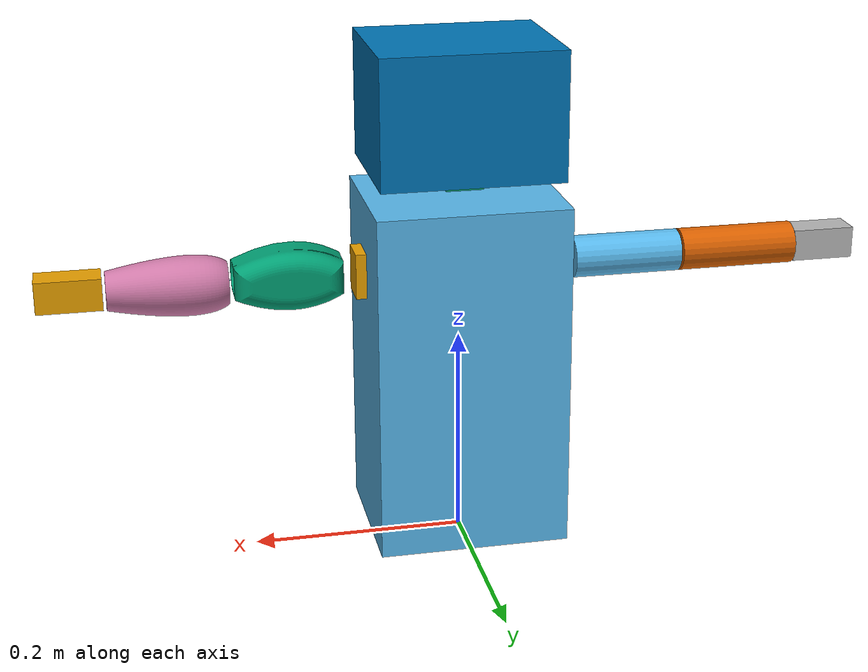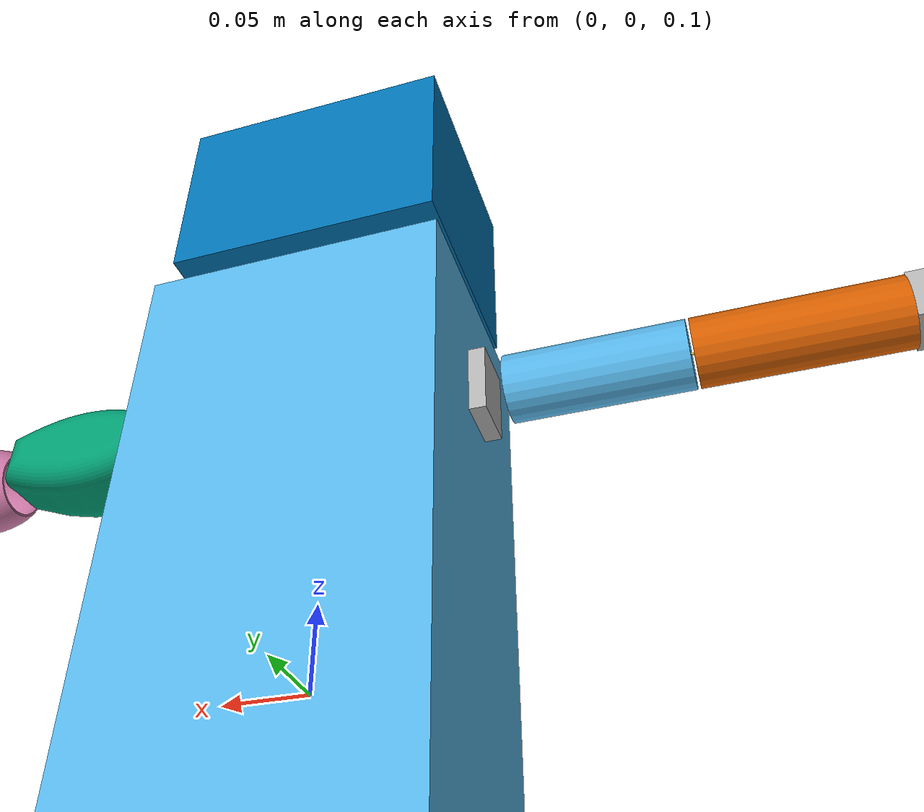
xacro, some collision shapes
<?xml version="1.0"?>
<robot name="philos" xmlns:xacro="https://www.ros.org/wiki/xacro">
	<!-- Include xacro macro -->
	<xacro:include filename="$(find philos)/urdf/joints_transmissions.xacro"/>
	<!-- Links -->
	<link name="world"/>

	<link name="body">
		<visual>
			<origin rpy="0 0 0" xyz="0.036 0.015 0.023"/>
			<geometry>
				<mesh filename= "package://philos/meshes/base_link.STL" scale = "1 1 1"/>
			</geometry>
		</visual>
		<collision>
			<origin rpy="0 0 0" xyz="0 0 0.1758"/>
			<geometry>
				<box size="0.18 0.15213 0.33"/>
			</geometry>
		</collision>
		<inertial>
			<origin rpy="0 0 0" xyz="0 0 0.1758"/>
			<mass value="10" />
			<inertia ixx="1.0" ixy="0.0" ixz="0.0" iyy="1.0" iyz="0.0" izz="1.0" />
		</inertial>
	</link>

	<link name="neck_bottom">
		<visual>
			<origin rpy="0 0 0" xyz="0 0 0.011"/>
			<geometry>
				<box size="0.035 0.056 0.022"/>
			</geometry>
		</visual>
		<!-- collisino for the neck is turned off -->
		<inertial>
			<origin rpy="0 0 0" xyz="0 0 0.011"/>
			<mass value="10" />
			<inertia ixx="1.0" ixy="0.0" ixz="0.0" iyy="1.0" iyz="0.0" izz="1.0" />
		</inertial>
	</link>

	<link name = "neck_top">
		<visual>
			<origin rpy = "0 0 0" xyz = "0 0 0.011"/>
			<geometry>
				<box size = "0.035 0.056 0.022"/>
			</geometry>
		</visual>
		<!-- collision for the neck is turned off -->
		<inertial>
			<origin rpy="0 0 0" xyz="0 0 0.011"/>
			<mass value="10" />
			<inertia ixx="1.0" ixy="0.0" ixz="0.0" iyy="1.0" iyz="0.0" izz="1.0" />
		</inertial>
	</link>

	<link name="head">
		<visual>
			<origin rpy="0 0 3.14" xyz="0 0 0.011"/>
			<geometry>
				<mesh filename = "package://philos/meshes/head.STL"/>
			</geometry>
		</visual>
		<collision>
			<origin rpy="0 0 0" xyz="0 0 0.03"/>
			<geometry>
				<box size="0.17 0.14 0.12"/>
			</geometry>
		</collision>
		<inertial>
			<origin rpy="0 0 0" xyz="0 0 0.03"/>
			<mass value="10" />
			<inertia ixx="1.0" ixy="0.0" ixz="0.0" iyy="1.0" iyz="0.0" izz="1.0" />
		</inertial>
	</link>

	<link name = "right_shoulder">
		<visual>
			<origin rpy = "0 0 0" xyz = "0 0 0"/>
			<geometry>
				<box size = "0.02 0.033 0.043"/>
			</geometry>
		</visual>
		<inertial>
			<origin rpy="0 0 0" xyz="0 0 0"/>
			<mass value="10" />
			<inertia ixx="1.0" ixy="0.0" ixz="0.0" iyy="1.0" iyz="0.0" izz="1.0" />
		</inertial>
	</link>

	<link name = "left_shoulder">
		<visual>
			<origin rpy = "0 0 0" xyz = "0 0 0"/>
			<geometry>
				<box size = "0.02 0.033 0.043"/>
			</geometry>
		</visual>
		<inertial>
			<origin rpy="0 0 0" xyz="0 0 0"/>
			<mass value="10" />
			<inertia ixx="1.0" ixy="0.0" ixz="0.0" iyy="1.0" iyz="0.0" izz="1.0" />
		</inertial>
	</link>

	<link name = "right_shoulder_extension">
		<visual>
			<origin rpy = "0 0 0" xyz = "0 0 0"/>
			<geometry>
				<box size = "0.02 0.033 0.043"/>
			</geometry>
		</visual>
		<inertial>
			<origin rpy="0 0 0" xyz="0 0 0"/>
			<mass value="10" />
			<inertia ixx="1.0" ixy="0.0" ixz="0.0" iyy="1.0" iyz="0.0" izz="1.0" />
		</inertial>
	</link>

	<link name = "left_shoulder_extension">
		<visual>
			<origin rpy = "0 0 0" xyz = "0 0 0"/>
			<geometry>
				<box size = "0.02 0.033 0.043"/>
			</geometry>
		</visual>
		<inertial>
			<origin rpy="0 0 0" xyz="0 0 0"/>
			<mass value="10" />
			<inertia ixx="1.0" ixy="0.0" ixz="0.0" iyy="1.0" iyz="0.0" izz="1.0" />
		</inertial>
	</link>

	<link name = "right_arm">
		<visual>
			<origin rpy = "0 1.57 1.57" xyz = "0.005 -0.8 0.769"/>
			<geometry>
				<mesh filename = "package://philos/meshes/right_cover_upper.STL" scale = "0.001 0.001 0.001"/>
			</geometry>
		</visual>
		<collision>
			<origin rpy = "0 1.57 0" xyz = "-0.052 0 0"/>
			<geometry>
				<cylinder radius = "0.02" length = "0.104"/>
			</geometry>
		</collision>
		<inertial>
			<origin rpy="0 0 0" xyz="-0.052 0 0"/>
			<mass value="10" />
			<inertia ixx="1.0" ixy="0.0" ixz="0.0" iyy="1.0" iyz="0.0" izz="1.0" />
		</inertial>
	</link>

	<link name = "left_arm">
		<visual>
			<origin rpy = "0 1.57 1.57" xyz = "0.11 -0.8 0.769"/>
			<geometry>
				<mesh filename = "package://philos/meshes/left_cover_upper.STL" scale = "0.001 0.001 0.001"/>
			</geometry>
		</visual>
		<collision>
			<origin rpy = "0 1.57 0" xyz = "0.052 0 0"/>
			<geometry>
				<cylinder radius = "0.02" length = "0.104"/>
			</geometry>
		</collision>
		<inertial>
			<origin rpy="0 0 0" xyz="0.052 0 0"/>
			<mass value="10" />
			<inertia ixx="1.0" ixy="0.0" ixz="0.0" iyy="1.0" iyz="0.0" izz="1.0" />
		</inertial>
	</link>

	<link name = "right_arm_extension">
		<visual>
			<origin rpy = "0 0 0" xyz = "-0.001 0 0"/>
			<geometry>
				<box size = "0.002 0.001 0.001"/>
			</geometry>
		</visual>
		<collision>
			<origin rpy = "0 0 0" xyz = "-0.001 0 0"/>
			<geometry>
				<box size = "0.002 0.001 0.001"/>
			</geometry>
		</collision>
		<inertial>
			<origin rpy="0 0 0" xyz="-0.001 0 0"/>
			<mass value="10" />
			<inertia ixx="1.0" ixy="0.0" ixz="0.0" iyy="1.0" iyz="0.0" izz="1.0" />
		</inertial>
	</link>

	<link name = "left_arm_extension">
		<visual>
			<origin rpy = "0 0 0" xyz = "0.001 0 0"/>
			<geometry>
				<box size = "0.002 0.001 0.001"/>
			</geometry>
		</visual>
		<collision>
			<origin rpy = "0 0 0" xyz = "0.001 0 0"/>
			<geometry>
				<box size = "0.002 0.001 0.001"/>
			</geometry>
		</collision>
		<inertial>
			<origin rpy="0 0 0" xyz="0.001 0 0"/>
			<mass value="10" />
			<inertia ixx="1.0" ixy="0.0" ixz="0.0" iyy="1.0" iyz="0.0" izz="1.0" />
		</inertial>
	</link>

	<link name = "right_forearm">
		<visual>
			<origin rpy = "0 0 -1.57" xyz = "-0.11 0.028 -0.03"/>
			<geometry>
				<mesh filename = "package://philos/meshes/right_cover_lower.STL" scale = "0.001 0.001 0.001"/>
			</geometry>
		</visual>
		<collision>
			<origin rpy = "0 1.57 0" xyz = "-0.0565 0 0"/>
			<geometry>
				<cylinder radius = "0.02" length = "0.113"/>
			</geometry>
		</collision>
		<inertial>
			<origin rpy="0 0 0" xyz="-0.0565 0 0"/>
			<mass value="10" />
			<inertia ixx="1.0" ixy="0.0" ixz="0.0" iyy="1.0" iyz="0.0" izz="1.0" />
		</inertial>
	</link>

	<link name = "left_forearm">
		<visual>
			<origin rpy = "0 0 1.57" xyz = "0.11 -0.028 -0.03"/>
			<geometry>
				<mesh filename = "package://philos/meshes/left_cover_lower.STL" scale = "0.001 0.001 0.001"/>
			</geometry>
		</visual>
		<collision>
			<origin rpy = "0 1.57 0" xyz = "0.0565 0 0"/>
			<geometry>
				<cylinder radius = "0.02" length = "0.113"/>
			</geometry>
		</collision>
		<inertial>
			<origin rpy="0 0 0" xyz="0.0565 0 0"/>
			<mass value="10" />
			<inertia ixx="1.0" ixy="0.0" ixz="0.0" iyy="1.0" iyz="0.0" izz="1.0" />
		</inertial>
	</link>

	<link name = "right_gripper">
		<visual>
			<origin rpy = "0 0 0" xyz = "-0.03 0 0"/>
			<geometry>
				<box size = "0.06 0.03 0.03"/>
			</geometry>
		</visual>
		<collision>
			<origin rpy = "0 0 0" xyz = "-0.03 0 0"/>
			<geometry>
				<box size = "0.06 0.03 0.03"/>
			</geometry>
		</collision>
		<inertial>
			<origin rpy = "0 0 0" xyz = "-0.03 0 0"/>
			<mass value="10" />
			<inertia ixx="1.0" ixy="0.0" ixz="0.0" iyy="1.0" iyz="0.0" izz="1.0" />
		</inertial>
	</link>

	<link name = "left_gripper">
		<visual>
			<origin rpy = "0 0 0" xyz = "0.03 0 0"/>
			<geometry>
				<box size = "0.06 0.03 0.03"/>
			</geometry>
		</visual>
		<collision>
			<origin rpy = "0 0 0" xyz = "0.03 0 0"/>
			<geometry>
				<box size = "0.06 0.03 0.03"/>
			</geometry>
		</collision>
		<inertial>
			<origin rpy = "0 0 0" xyz = "0.03 0 0"/>
			<mass value="10" />
			<inertia ixx="1.0" ixy="0.0" ixz="0.0" iyy="1.0" iyz="0.0" izz="1.0" />
		</inertial>
	</link>

	<!-- Joints and Transmissions -->
	<joint name="fixed" type="fixed">
		<parent link="world"/>
		<child link="body"/>
	</joint>

	<joint_revolute name = "neck_row" axis = "1 0 0" child = "neck_bottom" parent = "body"  e_limit = "1000" l_limit = "-0.5" u_limit = "0.5" v_limit = "0.5" origin_rpy = "0 0 0" origin_xyz = "0 0 0.35" mechanicalReduction = "1"/>

	<joint_revolute name = "neck_yaw" axis = "0 0 1" child = "neck_top" parent = "neck_bottom"  e_limit = "1000" l_limit = "-1.507" u_limit = "1.507" v_limit = "0.5" origin_rpy = "0 0 0" origin_xyz = "0 0 0.022" mechanicalReduction = "1"/>

	<joint_revolute name = "neck_pitch" axis = "0 1 0" child = "head" parent = "neck_top"  e_limit = "1000" l_limit = "-0.3" u_limit = "0.3" v_limit = "0.5" origin_rpy = "0 0 0" origin_xyz = "0 0 0.022" mechanicalReduction = "1"/>

	<joint_revolute name = "right_shoulder_pitch" axis = "0 1 0" child = "right_shoulder" parent = "body" e_limit = "1000" l_limit = "-1.507" u_limit = "1.507" v_limit = "0.5" origin_rpy = "0 0 0" origin_xyz = "-0.07 0 0.27" mechanicalReduction = "1"/>

	<joint_revolute name = "left_shoulder_pitch" axis = "0 -1 0" child = "left_shoulder" parent = "body" e_limit = "1000" l_limit = "-1.507" u_limit = "1.507" v_limit = "0.5" origin_rpy = "0 0 0" origin_xyz = "0.07 0 0.27" mechanicalReduction = "1"/>

	<joint_revolute name = "right_shoulder_row" axis = "-1 0 0" child = "right_shoulder_extension" parent = "right_shoulder" e_limit = "1000" l_limit = "-1.507" u_limit = "1.507" v_limit = "0.5" origin_rpy = "0 0 0" origin_xyz = "-0.02 0 0" mechanicalReduction = "1"/>

	<joint_revolute name = "left_shoulder_row" axis = "-1 0 0" child = "left_shoulder_extension" parent = "left_shoulder" e_limit = "1000" l_limit = "-1.507" u_limit = "1.507" v_limit = "0.5" origin_rpy = "0 0 0" origin_xyz = "0.02 0 0" mechanicalReduction = "1"/>

	<joint_revolute name = "right_arm_pitch" axis = "0 -1 0" child = "right_arm" parent = "right_shoulder_extension" e_limit = "1000" l_limit = "-1.507" u_limit = "1.507" v_limit = "0.5" origin_rpy = "0 0 0" origin_xyz = "-0.02 0 0" mechanicalReduction = "1"/>

	<joint_revolute name = "left_arm_pitch" axis = "0 1 0" child = "left_arm" parent = "left_shoulder_extension" e_limit = "1000" l_limit = "-1.507" u_limit = "1.507" v_limit = "0.5" origin_rpy = "0 0 0" origin_xyz = "0.02 0 0" mechanicalReduction = "1"/>

	<joint_revolute name = "right_elbow_yaw" axis = "0 0 1" child = "right_arm_extension" parent = "right_arm" e_limit = "1000" l_limit = "0" u_limit = "2.1" v_limit = "0.5" origin_rpy = "0 0 0" origin_xyz = "-0.104 0 0" mechanicalReduction = "1"/>

	<joint_revolute name = "left_elbow_yaw" axis = "0 0 -1" child = "left_arm_extension" parent = "left_arm" e_limit = "1000" l_limit = "0" u_limit = "2.1" v_limit = "0.5" origin_rpy = "0 0 0" origin_xyz = "0.104 0 0" mechanicalReduction = "1"/>

	<joint_revolute name = "right_elbow_row" axis = "1 0 0" child = "right_forearm" parent = "right_arm_extension" e_limit = "1000" l_limit = "-1.507" u_limit = "1.507" v_limit = "0.5" origin_rpy = "0 0 0" origin_xyz = "-0.002 0 0" mechanicalReduction = "1"/>

	<joint_revolute name = "left_elbow_row" axis = "1 0 0" child = "left_forearm" parent = "left_arm_extension" e_limit = "1000" l_limit = "-1.507" u_limit = "1.507" v_limit = "0.5" origin_rpy = "0 0 0" origin_xyz = "0.002 0 0" mechanicalReduction = "1"/>

	<joint_revolute name = "right_gripper_pitch" axis = "0 1 0" child = "right_gripper" parent = "right_forearm" e_limit = "1000" l_limit = "-1.5" u_limit = "1.5" v_limit = "0.5" origin_rpy = "0 0 0" origin_xyz = "-0.113 0 0" mechanicalReduction = "1"/>

	<joint_revolute name = "left_gripper_pitch" axis = "0 -1 0" child = "left_gripper" parent = "left_forearm" e_limit = "1000" l_limit = "-1.5" u_limit = "1.5" v_limit = "0.5" origin_rpy = "0 0 0" origin_xyz = "0.113 0 0" mechanicalReduction = "1"/>

	<!-- gazebo_ros_control plugin -->
	<gazebo>
		<plugin filename="libgazebo_ros_control.so" name="gazebo_ros_control">
			<robotSimType>gazebo_ros_control/DefaultRobotHWSim</robotSimType>
		</plugin>
	</gazebo>

</robot>

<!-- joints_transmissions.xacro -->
<robot xmlns:xacro="https://www.ros.org/wiki/xacro">
	<xacro:macro name="joint_revolute" params="name axis e_limit l_limit u_limit v_limit origin_rpy origin_xyz parent child mechanicalReduction">
		<joint name="${name}" type="revolute">
			<axis xyz="${axis}"/>
			<limit effort="${e_limit}" lower="${l_limit}" upper="${u_limit}" velocity="${v_limit}"/>
			<origin rpy="${origin_rpy}" xyz="${origin_xyz}"/>
			<parent link="${parent}"/>
			<child link="${child}"/>
		</joint>
		<transmission name="trans_${name}">
			<type>transmission_interface/SimpleTransmission</type>
			<joint name="${name}">
				<hardwareInterface>hardware_interface/PositionJointInterface</hardwareInterface>
			</joint>
			<actuator name="motor_${name}">
				<mechanicalReduction>${mechanicalReduction}</mechanicalReduction>
				<hardwareInterface>hardware_interface/PositionJointInterface</hardwareInterface>
			</actuator>
		</transmission>
	</xacro:macro>
</robot>
